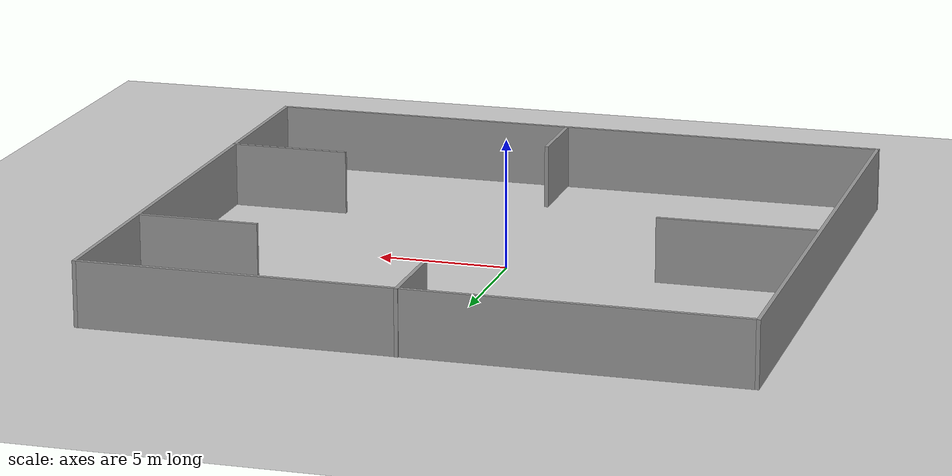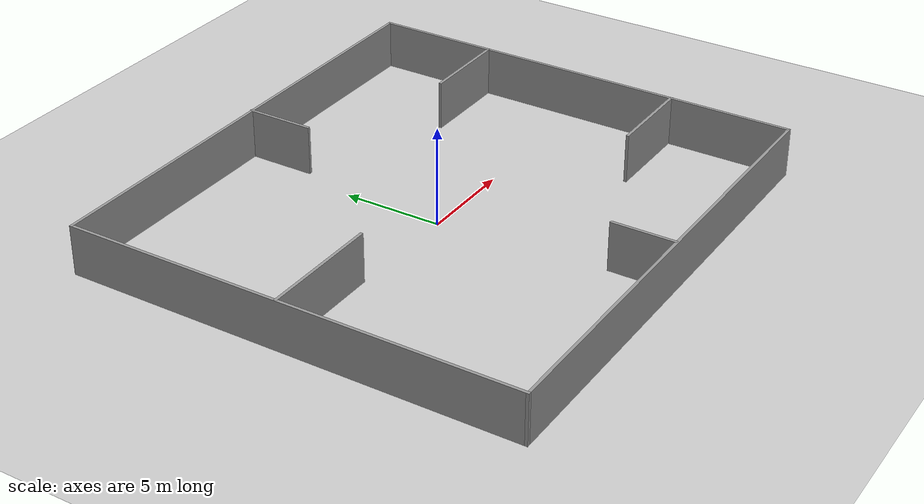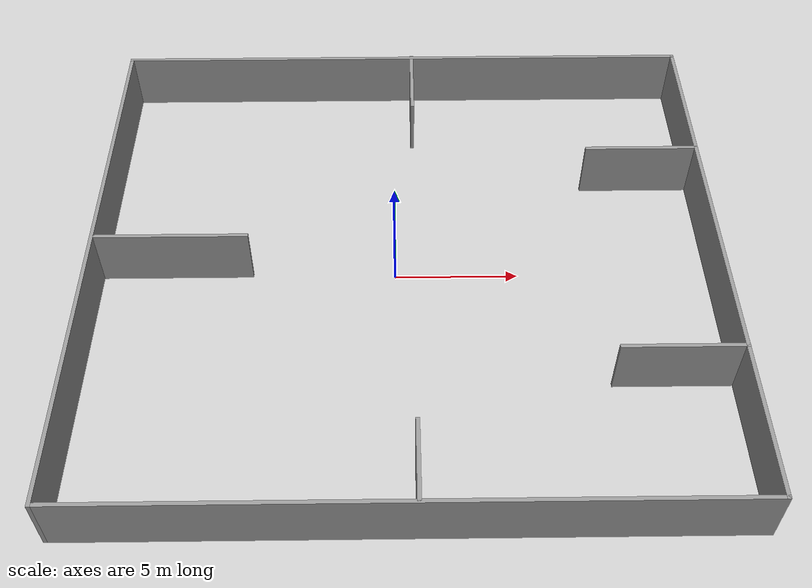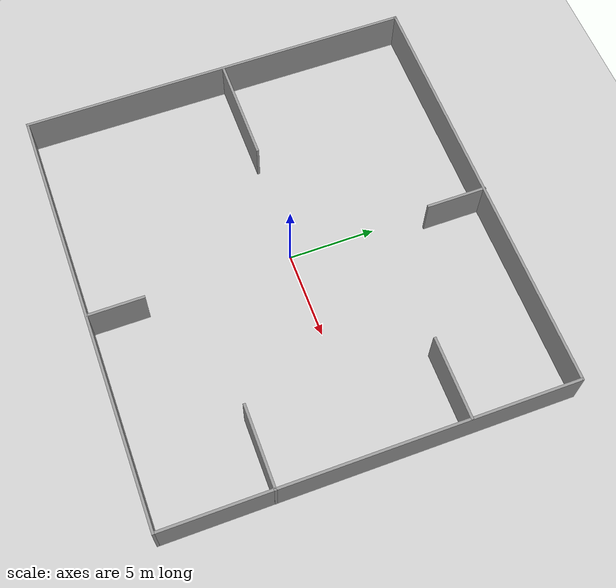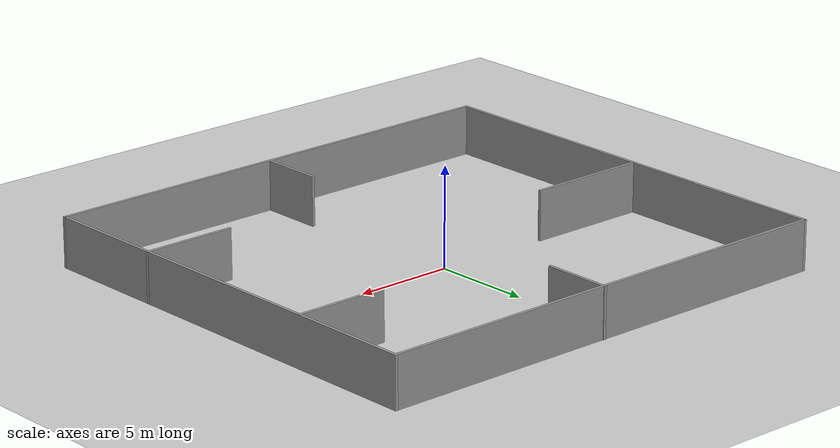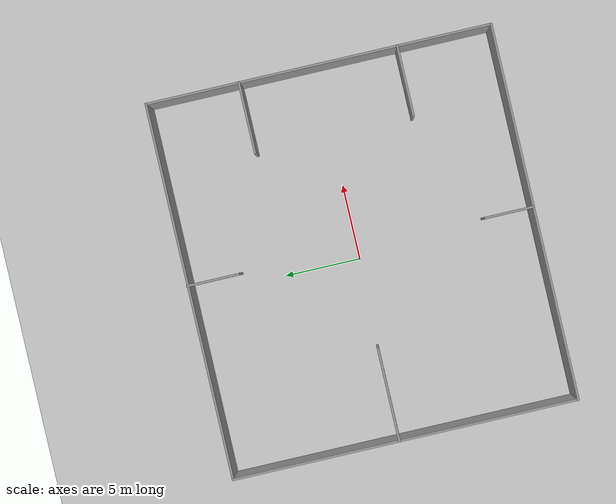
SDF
<?xml version="1.0" ?>
<sdf version='1.7'>
  <world name='default'>

    <include>
      <uri>model://ground_plane</uri>
    </include>
    <include>
      <uri>model://sun</uri>
    </include>

    <plugin name="ros_interface_plugin" filename="librotors_gazebo_ros_interface_plugin.so"/>

    <gravity>0 0 -9.8</gravity>
    <magnetic_field>6e-06 2.3e-05 -4.2e-05</magnetic_field>
    <atmosphere type='adiabatic'/>
    <physics type='ode'>
      <max_step_size>0.001</max_step_size>
      <real_time_factor>1.0</real_time_factor>
      <real_time_update_rate>1000</real_time_update_rate>
    </physics>
    <scene>
      <ambient>0.4 0.4 0.4 1</ambient>
      <background>0.7 0.7 0.7 1</background>
      <shadows>1</shadows>
    </scene>
    <wind/>
    <spherical_coordinates>
      <surface_model>EARTH_WGS84</surface_model>
      <latitude_deg>0</latitude_deg>
      <longitude_deg>0</longitude_deg>
      <elevation>0</elevation>
      <heading_deg>0</heading_deg>
    </spherical_coordinates>

    <model name='simple1_small'>
      <pose>0.415454 -0.240993 0 0 -0 0</pose>
      <link name='Wall_12'>
        <collision name='Wall_12_Collision'>
          <geometry>
            <box>
              <size>4.75 0.15 2.5</size>
            </box>
          </geometry>
          <pose>0 0 1.25 0 -0 0</pose>
          <max_contacts>10</max_contacts>
          <surface>
            <contact>
              <ode/>
            </contact>
            <bounce/>
            <friction>
              <torsional>
                <ode/>
              </torsional>
              <ode/>
            </friction>
          </surface>
        </collision>
        <visual name='Wall_12_Visual'>
          <pose>0 0 1.25 0 -0 0</pose>
          <geometry>
            <box>
              <size>4.75 0.15 2.5</size>
            </box>
          </geometry>
          <material>
            <script>
              <uri>file://media/materials/scripts/gazebo.material</uri>
              <name>Gazebo/Grey</name>
            </script>
            <ambient>1 1 1 1</ambient>
          </material>
          <meta>
            <layer>0</layer>
          </meta>
        </visual>
        <pose>10.0935 5.25202 0 0 -0 3.14159</pose>
        <self_collide>0</self_collide>
        <enable_wind>0</enable_wind>
        <kinematic>0</kinematic>
      </link>

      <link name='Wall_14'>
        <collision name='Wall_14_Collision'>
          <geometry>
            <box>
              <size>4.75 0.15 2.5</size>
            </box>
          </geometry>
          <pose>0 0 1.25 0 -0 0</pose>
          <max_contacts>10</max_contacts>
          <surface>
            <contact>
              <ode/>
            </contact>
            <bounce/>
            <friction>
              <torsional>
                <ode/>
              </torsional>
              <ode/>
            </friction>
          </surface>
        </collision>
        <visual name='Wall_14_Visual'>
          <pose>0 0 1.25 0 -0 0</pose>
          <geometry>
            <box>
              <size>4.75 0.15 2.5</size>
            </box>
          </geometry>
          <material>
            <script>
              <uri>file://media/materials/scripts/gazebo.material</uri>
              <name>Gazebo/Grey</name>
            </script>
            <ambient>1 1 1 1</ambient>
          </material>
          <meta>
            <layer>0</layer>
          </meta>
        </visual>
        <pose>10.1287 -5.23125 0 0 -0 3.14159</pose>
        <self_collide>0</self_collide>
        <enable_wind>0</enable_wind>
        <kinematic>0</kinematic>
      </link>

      <link name='Wall_16'>
        <collision name='Wall_16_Collision'>
          <geometry>
            <box>
              <size>3.25 0.15 2.5</size>
            </box>
          </geometry>
          <pose>0 0 1.25 0 -0 0</pose>
          <max_contacts>10</max_contacts>
          <surface>
            <contact>
              <ode/>
            </contact>
            <bounce/>
            <friction>
              <torsional>
                <ode/>
              </torsional>
              <ode/>
            </friction>
          </surface>
        </collision>
        <visual name='Wall_16_Visual'>
          <pose>0 0 1.25 0 -0 0</pose>
          <geometry>
            <box>
              <size>3.25 0.15 2.5</size>
            </box>
          </geometry>
          <material>
            <script>
              <uri>file://media/materials/scripts/gazebo.material</uri>
              <name>Gazebo/Grey</name>
            </script>
            <ambient>1 1 1 1</ambient>
          </material>
          <meta>
            <layer>0</layer>
          </meta>
        </visual>
        <pose>0.327221 -9.83754 0 0 -0 1.5708</pose>
        <self_collide>0</self_collide>
        <enable_wind>0</enable_wind>
        <kinematic>0</kinematic>
      </link>

      <link name='Wall_18'>
        <collision name='Wall_18_Collision'>
          <geometry>
            <box>
              <size>3.5 0.15 2.5</size>
            </box>
          </geometry>
          <pose>0 0 1.25 0 -0 0</pose>
          <max_contacts>10</max_contacts>
          <surface>
            <contact>
              <ode/>
            </contact>
            <bounce/>
            <friction>
              <torsional>
                <ode/>
              </torsional>
              <ode/>
            </friction>
          </surface>
        </collision>
        <visual name='Wall_18_Visual'>
          <pose>0 0 1.25 0 -0 0</pose>
          <geometry>
            <box>
              <size>3.5 0.15 2.5</size>
            </box>
          </geometry>
          <material>
            <script>
              <uri>file://media/materials/scripts/gazebo.material</uri>
              <name>Gazebo/Grey</name>
            </script>
            <ambient>1 1 1 1</ambient>
          </material>
          <meta>
            <layer>0</layer>
          </meta>
        </visual>
        <pose>0.397579 9.76848 0 0 -0 -1.5708</pose>
        <self_collide>0</self_collide>
        <enable_wind>0</enable_wind>
        <kinematic>0</kinematic>
      </link>

      <link name='Wall_20'>
        <collision name='Wall_20_Collision'>
          <geometry>
            <box>
              <size>6.25 0.15 2.5</size>
            </box>
          </geometry>
          <pose>0 0 1.25 0 -0 0</pose>
          <max_contacts>10</max_contacts>
          <surface>
            <contact>
              <ode/>
            </contact>
            <bounce/>
            <friction>
              <torsional>
                <ode/>
              </torsional>
              <ode/>
            </friction>
          </surface>
        </collision>
        <visual name='Wall_20_Visual'>
          <pose>0 0 1.25 0 -0 0</pose>
          <geometry>
            <box>
              <size>6.25 0.15 2.5</size>
            </box>
          </geometry>
          <material>
            <script>
              <uri>file://media/materials/scripts/gazebo.material</uri>
              <name>Gazebo/Grey</name>
            </script>
            <ambient>1 1 1 1</ambient>
          </material>
          <meta>
            <layer>0</layer>
          </meta>
        </visual>
        <pose>-9.35749 0.397349 0 0 -0 0</pose>
        <self_collide>0</self_collide>
        <enable_wind>0</enable_wind>
        <kinematic>0</kinematic>
      </link>

      <link name='Wall_6'>
        <collision name='Wall_6_Collision'>
          <geometry>
            <box>
              <size>25 0.15 2.5</size>
            </box>
          </geometry>
          <pose>0 0 1.25 0 -0 0</pose>
          <max_contacts>10</max_contacts>
          <surface>
            <contact>
              <ode/>
            </contact>
            <bounce/>
            <friction>
              <torsional>
                <ode/>
              </torsional>
              <ode/>
            </friction>
          </surface>
        </collision>
        <visual name='Wall_6_Visual'>
          <pose>0 0 1.25 0 -0 0</pose>
          <geometry>
            <box>
              <size>25 0.15 2.5</size>
            </box>
          </geometry>
          <material>
            <script>
              <uri>file://media/materials/scripts/gazebo.material</uri>
              <name>Gazebo/Grey</name>
            </script>
            <ambient>1 1 1 1</ambient>
          </material>
          <meta>
            <layer>0</layer>
          </meta>
        </visual>
        <pose>-0.003715 -11.4435 0 0 -0 3.14159</pose>
        <self_collide>0</self_collide>
        <enable_wind>0</enable_wind>
        <kinematic>0</kinematic>
      </link>

      <link name='Wall_7'>
        <collision name='Wall_7_Collision'>
          <geometry>
            <box>
              <size>23 0.15 2.5</size>
            </box>
          </geometry>
          <pose>0 0 1.25 0 -0 0</pose>
          <max_contacts>10</max_contacts>
          <surface>
            <contact>
              <ode/>
            </contact>
            <bounce/>
            <friction>
              <torsional>
                <ode/>
              </torsional>
              <ode/>
            </friction>
          </surface>
        </collision>
        <visual name='Wall_7_Visual'>
          <pose>0 0 1.25 0 -0 0</pose>
          <geometry>
            <box>
              <size>23 0.15 2.5</size>
            </box>
          </geometry>
          <material>
            <script>
              <uri>file://media/materials/scripts/gazebo.material</uri>
              <name>Gazebo/Grey</name>
            </script>
            <ambient>1 1 1 1</ambient>
          </material>
          <meta>
            <layer>0</layer>
          </meta>
        </visual>
        <pose>-12.4287 -0.01848 0 0 -0 1.5708</pose>
        <self_collide>0</self_collide>
        <enable_wind>0</enable_wind>
        <kinematic>0</kinematic>
      </link>

      <link name='Wall_8'>
        <collision name='Wall_8_Collision'>
          <geometry>
            <box>
              <size>25 0.15 2.5</size>
            </box>
          </geometry>
          <pose>0 0 1.25 0 -0 0</pose>
          <max_contacts>10</max_contacts>
          <surface>
            <contact>
              <ode/>
            </contact>
            <bounce/>
            <friction>
              <torsional>
                <ode/>
              </torsional>
              <ode/>
            </friction>
          </surface>
        </collision>
        <visual name='Wall_8_Visual'>
          <pose>0 0 1.25 0 -0 0</pose>
          <geometry>
            <box>
              <size>25 0.15 2.5</size>
            </box>
          </geometry>
          <material>
            <script>
              <uri>file://media/materials/scripts/gazebo.material</uri>
              <name>Gazebo/Grey</name>
            </script>
            <ambient>1 1 1 1</ambient>
          </material>
          <meta>
            <layer>0</layer>
          </meta>
        </visual>
        <pose>-0.003715 11.4065 0 0 -0 0</pose>
        <self_collide>0</self_collide>
        <enable_wind>0</enable_wind>
        <kinematic>0</kinematic>
      </link>

      <link name='Wall_9'>
        <collision name='Wall_9_Collision'>
          <geometry>
            <box>
              <size>23 0.15 2.5</size>
            </box>
          </geometry>
          <pose>0 0 1.25 0 -0 0</pose>
          <max_contacts>10</max_contacts>
          <surface>
            <contact>
              <ode/>
            </contact>
            <bounce/>
            <friction>
              <torsional>
                <ode/>
              </torsional>
              <ode/>
            </friction>
          </surface>
        </collision>
        <visual name='Wall_9_Visual'>
          <pose>0 0 1.25 0 -0 0</pose>
          <geometry>
            <box>
              <size>23 0.15 2.5</size>
            </box>
          </geometry>
          <material>
            <script>
              <uri>file://media/materials/scripts/gazebo.material</uri>
              <name>Gazebo/Grey</name>
            </script>
            <ambient>1 1 1 1</ambient>
          </material>
          <meta>
            <layer>0</layer>
          </meta>
        </visual>
        <pose>12.4213 -0.01848 0 0 -0 -1.5708</pose>
        <self_collide>0</self_collide>
        <enable_wind>0</enable_wind>
        <kinematic>0</kinematic>
      </link>
      <static>1</static>
    </model>

  </world>
</sdf>
